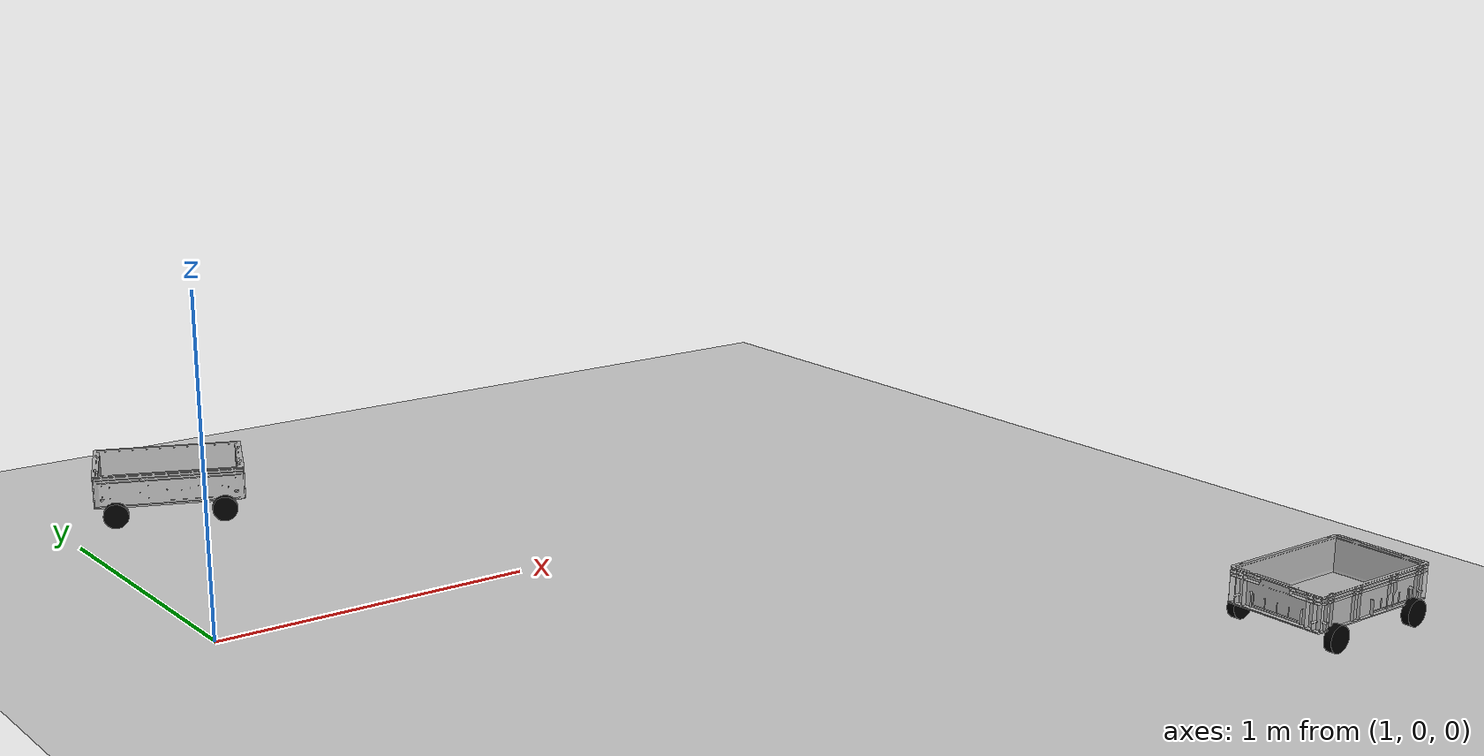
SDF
<sdf version="1.7">
 <world name="default">
  <light name="sun" type="directional">
   <pose>0 0 10 0 -0 0</pose>
   <diffuse>0.8 0.8 0.8 1</diffuse>
   <specular>0.2 0.2 0.2 1</specular>
   <attenuation>
    <range>1000</range>
    <constant>0.9</constant>
    <linear>0.01</linear>
    <quadratic>0.001</quadratic>
   </attenuation>
   <direction>-0.5 0.1 -0.9</direction>
   <spot><inner_angle>0</inner_angle><outer_angle>0</outer_angle><falloff>0</falloff></spot>
  </light>
  <model name="ground_plane">
   <static>1</static>
   <link name="link">
    <collision name="collision">
     <geometry><plane><normal>0 0 1</normal><size>100 100</size></plane></geometry>
     <surface><friction><ode><mu>100</mu><mu2>50</mu2></ode></friction></surface>
    </collision>
    <visual name="visual">
     <cast_shadows>0</cast_shadows>
     <geometry><plane><normal>0 0 1</normal><size>100 100</size></plane></geometry>
     <material>
      <script><uri>file://media/materials/scripts/gazebo.material</uri><name>Gazebo/Grey</name></script>
     </material>
    </visual>
   </link>
  </model>
  <gravity>0 0 -9.8</gravity>
  <magnetic_field>6e-06 2.3e-05 -4.2e-05</magnetic_field>
  <atmosphere type="adiabatic"/>
  <physics type="ode">
   <max_step_size>0.001</max_step_size>
   <real_time_factor>1</real_time_factor>
   <real_time_update_rate>1000</real_time_update_rate>
  </physics>
  <scene><ambient>0.4 0.4 0.4 1</ambient><background>0.7 0.7 0.7 1</background><shadows>1</shadows></scene>
  <audio><device>default</device></audio>
  <spherical_coordinates>
   <surface_model>EARTH_WGS84</surface_model>
   <latitude_deg>0</latitude_deg>
   <longitude_deg>0</longitude_deg>
   <elevation>0</elevation>
   <heading_deg>0</heading_deg>
  </spherical_coordinates>
  <model name="klt_model">
   <static>0</static>
   <link name="klt_link">
    <collision name="collision">
     <geometry>
      <mesh><uri>model://klt_model/meshes/RL-KLT_6280.stl</uri><scale>0.0008 0.0008 0.0004</scale></mesh>
     </geometry>
    </collision>
    <visual name="visual">
     <geometry>
      <mesh><uri>model://klt_model/meshes/RL-KLT_6280.stl</uri><scale>0.0008 0.0008 0.0004</scale></mesh>
     </geometry>
    </visual>
    <inertial>
     <inertia><ixx>1</ixx><ixy>0</ixy><ixz>0</ixz><iyy>1</iyy><iyz>0</iyz><izz>1</izz></inertia>
     <mass>1</mass>
    </inertial>
   </link>
   <link name="wheel1">
    <pose>0.17 0.165 -0.019 1.5707 -0 0</pose>
    <collision name="collision">
     <geometry><cylinder><radius>0.08</radius><length>0.04</length></cylinder></geometry>
    </collision>
    <visual name="visual">
     <geometry><cylinder><radius>0.04</radius><length>0.025</length></cylinder></geometry>
     <material>
      <ambient>0 0 0 1</ambient>
      <diffuse>0 0 0 1</diffuse>
      <specular>0 0 0 1</specular>
      <emissive>0 0 0 1</emissive>
     </material>
    </visual>
    <inertial>
     <inertia><ixx>1</ixx><ixy>0</ixy><ixz>0</ixz><iyy>1</iyy><iyz>0</iyz><izz>1</izz></inertia>
     <mass>1</mass>
    </inertial>
   </link>
   <joint name="klt_wheel_1" type="fixed">
    <pose>0.17 0.165 -0.019 1.5707 -0 0</pose>
    <parent>klt_link</parent>
    <child>wheel1</child>
    <axis><xyz>0 0 1</xyz><limit><lower>-1e+16</lower><upper>1e+16</upper></limit></axis>
   </joint>
   <link name="wheel2">
    <pose>0.17 -0.165 -0.019 1.5707 -0 0</pose>
    <collision name="collision">
     <geometry><cylinder><radius>0.08</radius><length>0.04</length></cylinder></geometry>
    </collision>
    <visual name="visual">
     <geometry><cylinder><radius>0.04</radius><length>0.025</length></cylinder></geometry>
     <material>
      <ambient>0 0 0 1</ambient>
      <diffuse>0 0 0 1</diffuse>
      <specular>0 0 0 1</specular>
      <emissive>0 0 0 1</emissive>
     </material>
    </visual>
    <inertial>
     <inertia><ixx>1</ixx><ixy>0</ixy><ixz>0</ixz><iyy>1</iyy><iyz>0</iyz><izz>1</izz></inertia>
     <mass>1</mass>
    </inertial>
   </link>
   <joint name="klt_wheel_2" type="fixed">
    <pose>0.17 -0.165 -0.019 1.5707 -0 0</pose>
    <parent>klt_link</parent>
    <child>wheel2</child>
    <axis><xyz>0 0 1</xyz><limit><lower>-1e+16</lower><upper>1e+16</upper></limit></axis>
   </joint>
   <link name="wheel3">
    <pose>-0.17 0.165 -0.019 1.5707 -0 0</pose>
    <collision name="collision">
     <geometry><cylinder><radius>0.08</radius><length>0.04</length></cylinder></geometry>
    </collision>
    <visual name="visual">
     <geometry><cylinder><radius>0.04</radius><length>0.025</length></cylinder></geometry>
     <material>
      <ambient>0 0 0 1</ambient>
      <diffuse>0 0 0 1</diffuse>
      <specular>0 0 0 1</specular>
      <emissive>0 0 0 1</emissive>
     </material>
    </visual>
    <inertial>
     <inertia><ixx>1</ixx><ixy>0</ixy><ixz>0</ixz><iyy>1</iyy><iyz>0</iyz><izz>1</izz></inertia>
     <mass>1</mass>
    </inertial>
   </link>
   <joint name="klt_wheel_3" type="fixed">
    <pose>-0.17 0.165 -0.019 1.5707 -0 0</pose>
    <parent>klt_link</parent>
    <child>wheel3</child>
    <axis><xyz>0 0 1</xyz><limit><lower>-1e+16</lower><upper>1e+16</upper></limit></axis>
   </joint>
   <link name="wheel4">
    <pose>-0.17 -0.165 -0.019 1.5707 -0 0</pose>
    <collision name="collision">
     <geometry><cylinder><radius>0.08</radius><length>0.04</length></cylinder></geometry>
    </collision>
    <visual name="visual">
     <geometry><cylinder><radius>0.04</radius><length>0.025</length></cylinder></geometry>
     <material>
      <ambient>0 0 0 1</ambient>
      <diffuse>0 0 0 1</diffuse>
      <specular>0 0 0 1</specular>
      <emissive>0 0 0 1</emissive>
     </material>
    </visual>
    <inertial>
     <inertia><ixx>1</ixx><ixy>0</ixy><ixz>0</ixz><iyy>1</iyy><iyz>0</iyz><izz>1</izz></inertia>
     <mass>1</mass>
    </inertial>
   </link>
   <joint name="klt_wheel_4" type="fixed">
    <pose>-0.17 -0.165 -0.019 1.5707 -0 0</pose>
    <parent>klt_link</parent>
    <child>wheel4</child>
    <axis><xyz>0 0 1</xyz><limit><lower>-1e+16</lower><upper>1e+16</upper></limit></axis>
   </joint>
   <pose>1.35042 1.10509 0.099002 0 3e-06 -0.396739</pose>
  </model>
  <model name="klt_model_0">
   <static>0</static>
   <link name="klt_link">
    <collision name="collision">
     <geometry>
      <mesh><uri>model://klt_model/meshes/RL-KLT_6280.stl</uri><scale>0.0008 0.0008 0.0004</scale></mesh>
     </geometry>
    </collision>
    <visual name="visual">
     <geometry>
      <mesh><uri>model://klt_model/meshes/RL-KLT_6280.stl</uri><scale>0.0008 0.0008 0.0004</scale></mesh>
     </geometry>
    </visual>
    <inertial>
     <inertia><ixx>1</ixx><ixy>0</ixy><ixz>0</ixz><iyy>1</iyy><iyz>0</iyz><izz>1</izz></inertia>
     <mass>1</mass>
    </inertial>
   </link>
   <link name="wheel1">
    <pose>0.17 0.165 -0.019 1.5707 -0 0</pose>
    <collision name="collision">
     <geometry><cylinder><radius>0.08</radius><length>0.04</length></cylinder></geometry>
    </collision>
    <visual name="visual">
     <geometry><cylinder><radius>0.04</radius><length>0.025</length></cylinder></geometry>
     <material>
      <ambient>0 0 0 1</ambient>
      <diffuse>0 0 0 1</diffuse>
      <specular>0 0 0 1</specular>
      <emissive>0 0 0 1</emissive>
     </material>
    </visual>
    <inertial>
     <inertia><ixx>1</ixx><ixy>0</ixy><ixz>0</ixz><iyy>1</iyy><iyz>0</iyz><izz>1</izz></inertia>
     <mass>1</mass>
    </inertial>
   </link>
   <joint name="klt_wheel_1" type="fixed">
    <pose>0.17 0.165 -0.019 1.5707 -0 0</pose>
    <parent>klt_link</parent>
    <child>wheel1</child>
    <axis><xyz>0 0 1</xyz><limit><lower>-1e+16</lower><upper>1e+16</upper></limit></axis>
   </joint>
   <link name="wheel2">
    <pose>0.17 -0.165 -0.019 1.5707 -0 0</pose>
    <collision name="collision">
     <geometry><cylinder><radius>0.08</radius><length>0.04</length></cylinder></geometry>
    </collision>
    <visual name="visual">
     <geometry><cylinder><radius>0.04</radius><length>0.025</length></cylinder></geometry>
     <material>
      <ambient>0 0 0 1</ambient>
      <diffuse>0 0 0 1</diffuse>
      <specular>0 0 0 1</specular>
      <emissive>0 0 0 1</emissive>
     </material>
    </visual>
    <inertial>
     <inertia><ixx>1</ixx><ixy>0</ixy><ixz>0</ixz><iyy>1</iyy><iyz>0</iyz><izz>1</izz></inertia>
     <mass>1</mass>
    </inertial>
   </link>
   <joint name="klt_wheel_2" type="fixed">
    <pose>0.17 -0.165 -0.019 1.5707 -0 0</pose>
    <parent>klt_link</parent>
    <child>wheel2</child>
    <axis><xyz>0 0 1</xyz><limit><lower>-1e+16</lower><upper>1e+16</upper></limit></axis>
   </joint>
   <link name="wheel3">
    <pose>-0.17 0.165 -0.019 1.5707 -0 0</pose>
    <collision name="collision">
     <geometry><cylinder><radius>0.08</radius><length>0.04</length></cylinder></geometry>
    </collision>
    <visual name="visual">
     <geometry><cylinder><radius>0.04</radius><length>0.025</length></cylinder></geometry>
     <material>
      <ambient>0 0 0 1</ambient>
      <diffuse>0 0 0 1</diffuse>
      <specular>0 0 0 1</specular>
      <emissive>0 0 0 1</emissive>
     </material>
    </visual>
    <inertial>
     <inertia><ixx>1</ixx><ixy>0</ixy><ixz>0</ixz><iyy>1</iyy><iyz>0</iyz><izz>1</izz></inertia>
     <mass>1</mass>
    </inertial>
   </link>
   <joint name="klt_wheel_3" type="fixed">
    <pose>-0.17 0.165 -0.019 1.5707 -0 0</pose>
    <parent>klt_link</parent>
    <child>wheel3</child>
    <axis><xyz>0 0 1</xyz><limit><lower>-1e+16</lower><upper>1e+16</upper></limit></axis>
   </joint>
   <link name="wheel4">
    <pose>-0.17 -0.165 -0.019 1.5707 -0 0</pose>
    <collision name="collision">
     <geometry><cylinder><radius>0.08</radius><length>0.04</length></cylinder></geometry>
    </collision>
    <visual name="visual">
     <geometry><cylinder><radius>0.04</radius><length>0.025</length></cylinder></geometry>
     <material>
      <ambient>0 0 0 1</ambient>
      <diffuse>0 0 0 1</diffuse>
      <specular>0 0 0 1</specular>
      <emissive>0 0 0 1</emissive>
     </material>
    </visual>
    <inertial>
     <inertia><ixx>1</ixx><ixy>0</ixy><ixz>0</ixz><iyy>1</iyy><iyz>0</iyz><izz>1</izz></inertia>
     <mass>1</mass>
    </inertial>
   </link>
   <joint name="klt_wheel_4" type="fixed">
    <pose>-0.17 -0.165 -0.019 1.5707 -0 0</pose>
    <parent>klt_link</parent>
    <child>wheel4</child>
    <axis><xyz>0 0 1</xyz><limit><lower>-1e+16</lower><upper>1e+16</upper></limit></axis>
   </joint>
   <pose>3.53274 -1.80542 0.099002 -2e-06 2e-06 0.00027</pose>
  </model>
 </world>
</sdf>
